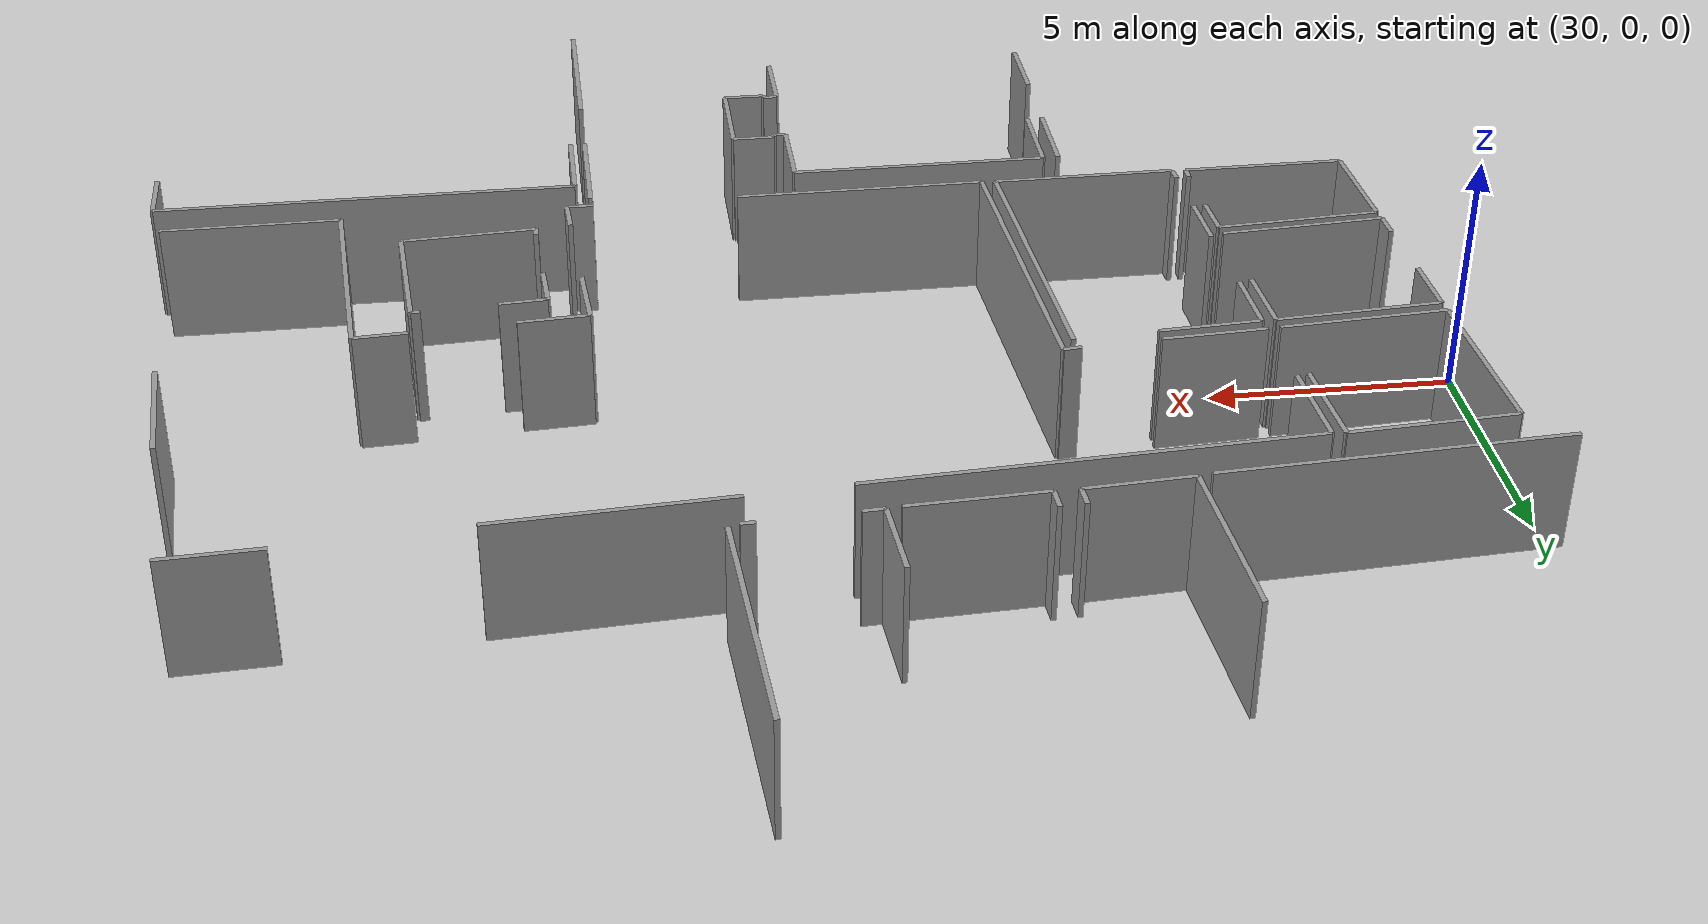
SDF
<sdf version="1.6">
 <world name="default">
  <model name="ground_plane">
   <static>1</static>
   <link name="link">
    <collision name="collision">
     <geometry><plane><normal>0 0 1</normal><size>100 100</size></plane></geometry>
     <surface><friction><ode><mu>100</mu><mu2>50</mu2></ode></friction></surface>
    </collision>
    <visual name="visual">
     <cast_shadows>0</cast_shadows>
     <geometry><plane><normal>0 0 1</normal><size>100 100</size></plane></geometry>
     <material>
      <script><uri>file://media/materials/scripts/gazebo.material</uri><name>Gazebo/Grey</name></script>
     </material>
    </visual>
   </link>
  </model>
  <model name="50025631">
   <static>1</static>
   <link name="Wall_79">
    <collision name="Wall_79_Collision">
     <geometry><box><size>0.282784674415 0.1 2.5</size></box></geometry>
     <pose>0.141392337207 0 1.25 0 0 0</pose>
    </collision>
    <visual name="Wall_79_Visual">
     <pose>0.141392337207 0 1.25 0 0 0</pose>
     <geometry><box><size>0.282784674415 0.1 2.5</size></box></geometry>
     <material>
      <script><uri>file://media/materials/scripts/gazebo.material</uri><name>Gazebo/Grey</name></script>
      <ambient>1 1 1 1</ambient>
     </material>
    </visual>
    <pose>100.915585529 -42.0435630235 0 0 0 -3.10430657143</pose>
   </link>
   <link name="Wall_80">
    <collision name="Wall_80_Collision">
     <geometry><box><size>0.428947510548 0.1 2.5</size></box></geometry>
     <pose>0.214473755274 0 1.25 0 0 0</pose>
    </collision>
    <visual name="Wall_80_Visual">
     <pose>0.214473755274 0 1.25 0 0 0</pose>
     <geometry><box><size>0.428947510548 0.1 2.5</size></box></geometry>
     <material>
      <script><uri>file://media/materials/scripts/gazebo.material</uri><name>Gazebo/Grey</name></script>
      <ambient>1 1 1 1</ambient>
     </material>
    </visual>
    <pose>98.7806163596 -42.1582493507 0 0 0 -3.09064360288</pose>
   </link>
   <link name="Wall_81">
    <collision name="Wall_81_Collision">
     <geometry><box><size>1.72743461681 0.1 2.5</size></box></geometry>
     <pose>0.863717308407 0 1.25 0 0 0</pose>
    </collision>
    <visual name="Wall_81_Visual">
     <pose>0.863717308407 0 1.25 0 0 0</pose>
     <geometry><box><size>1.72743461681 0.1 2.5</size></box></geometry>
     <material>
      <script><uri>file://media/materials/scripts/gazebo.material</uri><name>Gazebo/Grey</name></script>
      <ambient>1 1 1 1</ambient>
     </material>
    </visual>
    <pose>98.3522254609 -42.1800943654 0 0 0 1.63635212241</pose>
   </link>
   <link name="Wall_130">
    <collision name="Wall_130_Collision">
     <geometry><box><size>5.19189119286 0.1 2.5</size></box></geometry>
     <pose>2.59594559643 0 1.25 0 0 0</pose>
    </collision>
    <visual name="Wall_130_Visual">
     <pose>2.59594559643 0 1.25 0 0 0</pose>
     <geometry><box><size>5.19189119286 0.1 2.5</size></box></geometry>
     <material>
      <script><uri>file://media/materials/scripts/gazebo.material</uri><name>Gazebo/Grey</name></script>
      <ambient>1 1 1 1</ambient>
     </material>
    </visual>
    <pose>101.129336458 -41.9763769027 0 0 0 1.62459053032</pose>
   </link>
   <link name="Wall_135">
    <collision name="Wall_135_Collision">
     <geometry><box><size>2.69886629602 0.1 2.5</size></box></geometry>
     <pose>1.34943314801 0 1.25 0 0 0</pose>
    </collision>
    <visual name="Wall_135_Visual">
     <pose>1.34943314801 0 1.25 0 0 0</pose>
     <geometry><box><size>2.69886629602 0.1 2.5</size></box></geometry>
     <material>
      <script><uri>file://media/materials/scripts/gazebo.material</uri><name>Gazebo/Grey</name></script>
      <ambient>1 1 1 1</ambient>
     </material>
    </visual>
    <pose>98.0634140456 -42.2164180526 0 0 0 -3.09315001709</pose>
   </link>
   <link name="Wall_136">
    <collision name="Wall_136_Collision">
     <geometry><box><size>0.472586084644 0.1 2.5</size></box></geometry>
     <pose>0.236293042322 0 1.25 0 0 0</pose>
    </collision>
    <visual name="Wall_136_Visual">
     <pose>0.236293042322 0 1.25 0 0 0</pose>
     <geometry><box><size>0.472586084644 0.1 2.5</size></box></geometry>
     <material>
      <script><uri>file://media/materials/scripts/gazebo.material</uri><name>Gazebo/Grey</name></script>
      <ambient>1 1 1 1</ambient>
     </material>
    </visual>
    <pose>95.3677138303 -42.3471071231 0 0 0 1.61703721763</pose>
   </link>
   <link name="Wall_138">
    <collision name="Wall_138_Collision">
     <geometry><box><size>0.457990475903 0.1 2.5</size></box></geometry>
     <pose>0.228995237951 0 1.25 0 0 0</pose>
    </collision>
    <visual name="Wall_138_Visual">
     <pose>0.228995237951 0 1.25 0 0 0</pose>
     <geometry><box><size>0.457990475903 0.1 2.5</size></box></geometry>
     <material>
      <script><uri>file://media/materials/scripts/gazebo.material</uri><name>Gazebo/Grey</name></script>
      <ambient>1 1 1 1</ambient>
     </material>
    </visual>
    <pose>94.8521968845 -41.8968712097 0 0 0 -1.52335831737</pose>
   </link>
   <link name="Wall_139">
    <collision name="Wall_139_Collision">
     <geometry><box><size>2.13206895655 0.1 2.5</size></box></geometry>
     <pose>1.06603447828 0 1.25 0 0 0</pose>
    </collision>
    <visual name="Wall_139_Visual">
     <pose>1.06603447828 0 1.25 0 0 0</pose>
     <geometry><box><size>2.13206895655 0.1 2.5</size></box></geometry>
     <material>
      <script><uri>file://media/materials/scripts/gazebo.material</uri><name>Gazebo/Grey</name></script>
      <ambient>1 1 1 1</ambient>
     </material>
    </visual>
    <pose>94.8739148933 -42.3543464594 0 0 0 -3.07685516227</pose>
   </link>
   <link name="Wall_140">
    <collision name="Wall_140_Collision">
     <geometry><box><size>3.70160611265 0.1 2.5</size></box></geometry>
     <pose>1.85080305633 0 1.25 0 0 0</pose>
    </collision>
    <visual name="Wall_140_Visual">
     <pose>1.85080305633 0 1.25 0 0 0</pose>
     <geometry><box><size>3.70160611265 0.1 2.5</size></box></geometry>
     <material>
      <script><uri>file://media/materials/scripts/gazebo.material</uri><name>Gazebo/Grey</name></script>
      <ambient>1 1 1 1</ambient>
     </material>
    </visual>
    <pose>92.7463120662 -42.4922748662 0 0 0 1.63558655034</pose>
   </link>
   <link name="Wall_145">
    <collision name="Wall_145_Collision">
     <geometry><box><size>6.91459844677 0.1 2.5</size></box></geometry>
     <pose>3.45729922338 0 1.25 0 0 0</pose>
    </collision>
    <visual name="Wall_145_Visual">
     <pose>3.45729922338 0 1.25 0 0 0</pose>
     <geometry><box><size>6.91459844677 0.1 2.5</size></box></geometry>
     <material>
      <script><uri>file://media/materials/scripts/gazebo.material</uri><name>Gazebo/Grey</name></script>
      <ambient>1 1 1 1</ambient>
     </material>
    </visual>
    <pose>92.4708362703 -42.5396480667 0 0 0 -3.08246903037</pose>
   </link>
   <link name="Wall_172">
    <collision name="Wall_172_Collision">
     <geometry><box><size>3.64331292754 0.1 2.5</size></box></geometry>
     <pose>1.82165646377 0 1.25 0 0 0</pose>
    </collision>
    <visual name="Wall_172_Visual">
     <pose>1.82165646377 0 1.25 0 0 0</pose>
     <geometry><box><size>3.64331292754 0.1 2.5</size></box></geometry>
     <material>
      <script><uri>file://media/materials/scripts/gazebo.material</uri><name>Gazebo/Grey</name></script>
      <ambient>1 1 1 1</ambient>
     </material>
    </visual>
    <pose>111.614054473 -53.5047023934 0 0 0 -3.13814150645</pose>
   </link>
   <link name="Wall_173">
    <collision name="Wall_173_Collision">
     <geometry><box><size>4.62572053015 0.1 2.5</size></box></geometry>
     <pose>2.31286026507 0 1.25 0 0 0</pose>
    </collision>
    <visual name="Wall_173_Visual">
     <pose>2.31286026507 0 1.25 0 0 0</pose>
     <geometry><box><size>4.62572053015 0.1 2.5</size></box></geometry>
     <material>
      <script><uri>file://media/materials/scripts/gazebo.material</uri><name>Gazebo/Grey</name></script>
      <ambient>1 1 1 1</ambient>
     </material>
    </visual>
    <pose>107.970763242 -53.5172759775 0 0 0 1.63638189992</pose>
   </link>
   <link name="Wall_174">
    <collision name="Wall_174_Collision">
     <geometry><box><size>1.07530812886 0.1 2.5</size></box></geometry>
     <pose>0.537654064431 0 1.25 0 0 0</pose>
    </collision>
    <visual name="Wall_174_Visual">
     <pose>0.537654064431 0 1.25 0 0 0</pose>
     <geometry><box><size>1.07530812886 0.1 2.5</size></box></geometry>
     <material>
      <script><uri>file://media/materials/scripts/gazebo.material</uri><name>Gazebo/Grey</name></script>
      <ambient>1 1 1 1</ambient>
     </material>
    </visual>
    <pose>107.66760016 -48.9015005747 0 0 0 -3.08285763805</pose>
   </link>
   <link name="Wall_175">
    <collision name="Wall_175_Collision">
     <geometry><box><size>1.4188035034 0.1 2.5</size></box></geometry>
     <pose>0.709401751699 0 1.25 0 0 0</pose>
    </collision>
    <visual name="Wall_175_Visual">
     <pose>0.709401751699 0 1.25 0 0 0</pose>
     <geometry><box><size>1.4188035034 0.1 2.5</size></box></geometry>
     <material>
      <script><uri>file://media/materials/scripts/gazebo.material</uri><name>Gazebo/Grey</name></script>
      <ambient>1 1 1 1</ambient>
     </material>
    </visual>
    <pose>104.522553073 -49.0988677424 0 0 0 -3.07718598556</pose>
   </link>
   <link name="Wall_176">
    <collision name="Wall_176_Collision">
     <geometry><box><size>1.45096289916 0.1 2.5</size></box></geometry>
     <pose>0.725481449581 0 1.25 0 0 0</pose>
    </collision>
    <visual name="Wall_176_Visual">
     <pose>0.725481449581 0 1.25 0 0 0</pose>
     <geometry><box><size>1.45096289916 0.1 2.5</size></box></geometry>
     <material>
      <script><uri>file://media/materials/scripts/gazebo.material</uri><name>Gazebo/Grey</name></script>
      <ambient>1 1 1 1</ambient>
     </material>
    </visual>
    <pose>103.106691306 -49.1901849841 0 0 0 -1.50413500219</pose>
   </link>
   <link name="Wall_177">
    <collision name="Wall_177_Collision">
     <geometry><box><size>0.75869379462 0.1 2.5</size></box></geometry>
     <pose>0.37934689731 0 1.25 0 0 0</pose>
    </collision>
    <visual name="Wall_177_Visual">
     <pose>0.37934689731 0 1.25 0 0 0</pose>
     <geometry><box><size>0.75869379462 0.1 2.5</size></box></geometry>
     <material>
      <script><uri>file://media/materials/scripts/gazebo.material</uri><name>Gazebo/Grey</name></script>
      <ambient>1 1 1 1</ambient>
     </material>
    </visual>
    <pose>103.323490376 -52.7337765839 0 0 0 -1.52005212917</pose>
   </link>
   <link name="Wall_178">
    <collision name="Wall_178_Collision">
     <geometry><box><size>0.538151707432 0.1 2.5</size></box></geometry>
     <pose>0.269075853716 0 1.25 0 0 0</pose>
    </collision>
    <visual name="Wall_178_Visual">
     <pose>0.269075853716 0 1.25 0 0 0</pose>
     <geometry><box><size>0.538151707432 0.1 2.5</size></box></geometry>
     <material>
      <script><uri>file://media/materials/scripts/gazebo.material</uri><name>Gazebo/Grey</name></script>
      <ambient>1 1 1 1</ambient>
     </material>
    </visual>
    <pose>103.361973164 -53.4914937799 0 0 0 3.13144431188</pose>
   </link>
   <link name="Wall_179">
    <collision name="Wall_179_Collision">
     <geometry><box><size>5.13359416547 0.1 2.5</size></box></geometry>
     <pose>2.56679708273 0 1.25 0 0 0</pose>
    </collision>
    <visual name="Wall_179_Visual">
     <pose>2.56679708273 0 1.25 0 0 0</pose>
     <geometry><box><size>5.13359416547 0.1 2.5</size></box></geometry>
     <material>
      <script><uri>file://media/materials/scripts/gazebo.material</uri><name>Gazebo/Grey</name></script>
      <ambient>1 1 1 1</ambient>
     </material>
    </visual>
    <pose>99.8376864605 -53.4983520985 0 0 0 -3.13911863588</pose>
   </link>
   <link name="Wall_180">
    <collision name="Wall_180_Collision">
     <geometry><box><size>6.65933276321 0.1 2.5</size></box></geometry>
     <pose>3.3296663816 0 1.25 0 0 0</pose>
    </collision>
    <visual name="Wall_180_Visual">
     <pose>3.3296663816 0 1.25 0 0 0</pose>
     <geometry><box><size>6.65933276321 0.1 2.5</size></box></geometry>
     <material>
      <script><uri>file://media/materials/scripts/gazebo.material</uri><name>Gazebo/Grey</name></script>
      <ambient>1 1 1 1</ambient>
     </material>
    </visual>
    <pose>94.7041080058 -53.5110526884 0 0 0 1.63295340932</pose>
   </link>
   <link name="Wall_181">
    <collision name="Wall_181_Collision">
     <geometry><box><size>0.365064291237 0.1 2.5</size></box></geometry>
     <pose>0.182532145619 0 1.25 0 0 0</pose>
    </collision>
    <visual name="Wall_181_Visual">
     <pose>0.182532145619 0 1.25 0 0 0</pose>
     <geometry><box><size>0.365064291237 0.1 2.5</size></box></geometry>
     <material>
      <script><uri>file://media/materials/scripts/gazebo.material</uri><name>Gazebo/Grey</name></script>
      <ambient>1 1 1 1</ambient>
     </material>
    </visual>
    <pose>94.2904497914 -46.8645799597 0 0 0 -3.01952470088</pose>
   </link>
   <link name="Wall_182">
    <collision name="Wall_182_Collision">
     <geometry><box><size>2.1057798775 0.1 2.5</size></box></geometry>
     <pose>1.05288993875 0 1.25 0 0 0</pose>
    </collision>
    <visual name="Wall_182_Visual">
     <pose>1.05288993875 0 1.25 0 0 0</pose>
     <geometry><box><size>2.1057798775 0.1 2.5</size></box></geometry>
     <material>
      <script><uri>file://media/materials/scripts/gazebo.material</uri><name>Gazebo/Grey</name></script>
      <ambient>1 1 1 1</ambient>
     </material>
    </visual>
    <pose>92.355133896 -47.0134308739 0 0 0 -3.0875862701</pose>
   </link>
   <link name="Wall_183">
    <collision name="Wall_183_Collision">
     <geometry><box><size>1.94923563541 0.1 2.5</size></box></geometry>
     <pose>0.974617817707 0 1.25 0 0 0</pose>
    </collision>
    <visual name="Wall_183_Visual">
     <pose>0.974617817707 0 1.25 0 0 0</pose>
     <geometry><box><size>1.94923563541 0.1 2.5</size></box></geometry>
     <material>
      <script><uri>file://media/materials/scripts/gazebo.material</uri><name>Gazebo/Grey</name></script>
      <ambient>1 1 1 1</ambient>
     </material>
    </visual>
    <pose>90.1484063935 -45.4615457888 0 0 0 1.63077651376</pose>
   </link>
   <link name="Wall_184">
    <collision name="Wall_184_Collision">
     <geometry><box><size>8.77440802262 0.1 2.5</size></box></geometry>
     <pose>4.38720401131 0 1.25 0 0 0</pose>
    </collision>
    <visual name="Wall_184_Visual">
     <pose>4.38720401131 0 1.25 0 0 0</pose>
     <geometry><box><size>8.77440802262 0.1 2.5</size></box></geometry>
     <material>
      <script><uri>file://media/materials/scripts/gazebo.material</uri><name>Gazebo/Grey</name></script>
      <ambient>1 1 1 1</ambient>
     </material>
    </visual>
    <pose>90.031560966 -43.5158154096 0 0 0 0.0612658068285</pose>
   </link>
   <link name="Wall_185">
    <collision name="Wall_185_Collision">
     <geometry><box><size>4.64846834846 0.1 2.5</size></box></geometry>
     <pose>2.32423417423 0 1.25 0 0 0</pose>
    </collision>
    <visual name="Wall_185_Visual">
     <pose>2.32423417423 0 1.25 0 0 0</pose>
     <geometry><box><size>4.64846834846 0.1 2.5</size></box></geometry>
     <material>
      <script><uri>file://media/materials/scripts/gazebo.material</uri><name>Gazebo/Grey</name></script>
      <ambient>1 1 1 1</ambient>
     </material>
    </visual>
    <pose>100.764194497 -42.8560197621 0 0 0 0.0633476566463</pose>
   </link>
   <link name="Wall_186">
    <collision name="Wall_186_Collision">
     <geometry><box><size>1.94876193725 0.1 2.5</size></box></geometry>
     <pose>0.974380968625 0 1.25 0 0 0</pose>
    </collision>
    <visual name="Wall_186_Visual">
     <pose>0.974380968625 0 1.25 0 0 0</pose>
     <geometry><box><size>1.94876193725 0.1 2.5</size></box></geometry>
     <material>
      <script><uri>file://media/materials/scripts/gazebo.material</uri><name>Gazebo/Grey</name></script>
      <ambient>1 1 1 1</ambient>
     </material>
    </visual>
    <pose>108.954169921 -42.3107834359 0 0 0 0.0521617378571</pose>
   </link>
   <link name="Wall_187">
    <collision name="Wall_187_Collision">
     <geometry><box><size>2.58600179958 0.1 2.5</size></box></geometry>
     <pose>1.29300089979 0 1.25 0 0 0</pose>
    </collision>
    <visual name="Wall_187_Visual">
     <pose>1.29300089979 0 1.25 0 0 0</pose>
     <geometry><box><size>2.58600179958 0.1 2.5</size></box></geometry>
     <material>
      <script><uri>file://media/materials/scripts/gazebo.material</uri><name>Gazebo/Grey</name></script>
      <ambient>1 1 1 1</ambient>
     </material>
    </visual>
    <pose>111.121271583 -45.5863925879 0 0 0 -1.50789040836</pose>
   </link>
   <link name="Wall_188">
    <collision name="Wall_188_Collision">
     <geometry><box><size>2.01223509323 0.1 2.5</size></box></geometry>
     <pose>1.00611754661 0 1.25 0 0 0</pose>
    </collision>
    <visual name="Wall_188_Visual">
     <pose>1.00611754661 0 1.25 0 0 0</pose>
     <geometry><box><size>2.01223509323 0.1 2.5</size></box></geometry>
     <material>
      <script><uri>file://media/materials/scripts/gazebo.material</uri><name>Gazebo/Grey</name></script>
      <ambient>1 1 1 1</ambient>
     </material>
    </visual>
    <pose>89.9100163203 -45.5007906117 0 0 0 1.6424320644</pose>
   </link>
   <link name="Wall_189">
    <collision name="Wall_189_Collision">
     <geometry><box><size>3.3493233256 0.1 2.5</size></box></geometry>
     <pose>1.6746616628 0 1.25 0 0 0</pose>
    </collision>
    <visual name="Wall_189_Visual">
     <pose>1.6746616628 0 1.25 0 0 0</pose>
     <geometry><box><size>3.3493233256 0.1 2.5</size></box></geometry>
     <material>
      <script><uri>file://media/materials/scripts/gazebo.material</uri><name>Gazebo/Grey</name></script>
      <ambient>1 1 1 1</ambient>
     </material>
    </visual>
    <pose>89.7659916303 -43.4937163831 0 0 0 -3.07560211764</pose>
   </link>
   <link name="Wall_190">
    <collision name="Wall_190_Collision">
     <geometry><box><size>3.66342753915 0.1 2.5</size></box></geometry>
     <pose>1.83171376957 0 1.25 0 0 0</pose>
    </collision>
    <visual name="Wall_190_Visual">
     <pose>1.83171376957 0 1.25 0 0 0</pose>
     <geometry><box><size>3.66342753915 0.1 2.5</size></box></geometry>
     <material>
      <script><uri>file://media/materials/scripts/gazebo.material</uri><name>Gazebo/Grey</name></script>
      <ambient>1 1 1 1</ambient>
     </material>
    </visual>
    <pose>86.4239583929 -43.7145796422 0 0 0 -1.51397859662</pose>
   </link>
   <link name="Wall_191">
    <collision name="Wall_191_Collision">
     <geometry><box><size>3.38116883963 0.1 2.5</size></box></geometry>
     <pose>1.69058441982 0 1.25 0 0 0</pose>
    </collision>
    <visual name="Wall_191_Visual">
     <pose>1.69058441982 0 1.25 0 0 0</pose>
     <geometry><box><size>3.38116883963 0.1 2.5</size></box></geometry>
     <material>
      <script><uri>file://media/materials/scripts/gazebo.material</uri><name>Gazebo/Grey</name></script>
      <ambient>1 1 1 1</ambient>
     </material>
    </visual>
    <pose>86.6319940561 -47.3720955338 0 0 0 0.0649540448732</pose>
   </link>
   <link name="Wall_192">
    <collision name="Wall_192_Collision">
     <geometry><box><size>3.77603332984 0.1 2.5</size></box></geometry>
     <pose>1.88801666492 0 1.25 0 0 0</pose>
    </collision>
    <visual name="Wall_192_Visual">
     <pose>1.88801666492 0 1.25 0 0 0</pose>
     <geometry><box><size>3.77603332984 0.1 2.5</size></box></geometry>
     <material>
      <script><uri>file://media/materials/scripts/gazebo.material</uri><name>Gazebo/Grey</name></script>
      <ambient>1 1 1 1</ambient>
     </material>
    </visual>
    <pose>94.4198688029 -53.4921288094 0 0 0 -3.13826280817</pose>
   </link>
   <link name="Wall_193">
    <collision name="Wall_193_Collision">
     <geometry><box><size>0.329281648643 0.1 2.5</size></box></geometry>
     <pose>0.164640824321 0 1.25 0 0 0</pose>
    </collision>
    <visual name="Wall_193_Visual">
     <pose>0.164640824321 0 1.25 0 0 0</pose>
     <geometry><box><size>0.329281648643 0.1 2.5</size></box></geometry>
     <material>
      <script><uri>file://media/materials/scripts/gazebo.material</uri><name>Gazebo/Grey</name></script>
      <ambient>1 1 1 1</ambient>
     </material>
    </visual>
    <pose>90.6438564071 -53.5047023934 0 0 0 1.64762738266</pose>
   </link>
   <link name="Wall_194">
    <collision name="Wall_194_Collision">
     <geometry><box><size>1.30154992604 0.1 2.5</size></box></geometry>
     <pose>0.650774963022 0 1.25 0 0 0</pose>
    </collision>
    <visual name="Wall_194_Visual">
     <pose>0.650774963022 0 1.25 0 0 0</pose>
     <geometry><box><size>1.30154992604 0.1 2.5</size></box></geometry>
     <material>
      <script><uri>file://media/materials/scripts/gazebo.material</uri><name>Gazebo/Grey</name></script>
      <ambient>1 1 1 1</ambient>
     </material>
    </visual>
    <pose>90.5533012008 -51.9905380605 0 0 0 1.62107146349</pose>
   </link>
   <link name="Wall_195">
    <collision name="Wall_195_Collision">
     <geometry><box><size>1.48000573497 0.1 2.5</size></box></geometry>
     <pose>0.740002867485 0 1.25 0 0 0</pose>
    </collision>
    <visual name="Wall_195_Visual">
     <pose>0.740002867485 0 1.25 0 0 0</pose>
     <geometry><box><size>1.48000573497 0.1 2.5</size></box></geometry>
     <material>
      <script><uri>file://media/materials/scripts/gazebo.material</uri><name>Gazebo/Grey</name></script>
      <ambient>1 1 1 1</ambient>
     </material>
    </visual>
    <pose>90.3739688709 -48.9021356042 0 0 0 1.62162036733</pose>
   </link>
   <link name="Wall_196">
    <collision name="Wall_196_Collision">
     <geometry><box><size>2.05813371947 0.1 2.5</size></box></geometry>
     <pose>1.02906685973 0 1.25 0 0 0</pose>
    </collision>
    <visual name="Wall_196_Visual">
     <pose>1.02906685973 0 1.25 0 0 0</pose>
     <geometry><box><size>2.05813371947 0.1 2.5</size></box></geometry>
     <material>
      <script><uri>file://media/materials/scripts/gazebo.material</uri><name>Gazebo/Grey</name></script>
      <ambient>1 1 1 1</ambient>
     </material>
    </visual>
    <pose>90.2987813784 -47.4240409467 0 0 0 0.060882931672</pose>
   </link>
   <link name="Wall_197">
    <collision name="Wall_197_Collision">
     <geometry><box><size>6.3130689498 0.1 2.5</size></box></geometry>
     <pose>3.1565344749 0 1.25 0 0 0</pose>
    </collision>
    <visual name="Wall_197_Visual">
     <pose>3.1565344749 0 1.25 0 0 0</pose>
     <geometry><box><size>6.3130689498 0.1 2.5</size></box></geometry>
     <material>
      <script><uri>file://media/materials/scripts/gazebo.material</uri><name>Gazebo/Grey</name></script>
      <ambient>1 1 1 1</ambient>
     </material>
    </visual>
    <pose>94.0299606917 -47.1911121272 0 0 0 -1.50899493856</pose>
   </link>
   <link name="Wall_198">
    <collision name="Wall_198_Collision">
     <geometry><box><size>3.33102339423 0.1 2.5</size></box></geometry>
     <pose>1.66551169712 0 1.25 0 0 0</pose>
    </collision>
    <visual name="Wall_198_Visual">
     <pose>1.66551169712 0 1.25 0 0 0</pose>
     <geometry><box><size>3.33102339423 0.1 2.5</size></box></geometry>
     <material>
      <script><uri>file://media/materials/scripts/gazebo.material</uri><name>Gazebo/Grey</name></script>
      <ambient>1 1 1 1</ambient>
     </material>
    </visual>
    <pose>90.3503457736 -53.4842544436 0 0 0 -3.13671222564</pose>
   </link>
   <link name="Wall_199">
    <collision name="Wall_199_Collision">
     <geometry><box><size>2.24162098073 0.1 2.5</size></box></geometry>
     <pose>1.12081049036 0 1.25 0 0 0</pose>
    </collision>
    <visual name="Wall_199_Visual">
     <pose>1.12081049036 0 1.25 0 0 0</pose>
     <geometry><box><size>2.24162098073 0.1 2.5</size></box></geometry>
     <material>
      <script><uri>file://media/materials/scripts/gazebo.material</uri><name>Gazebo/Grey</name></script>
      <ambient>1 1 1 1</ambient>
     </material>
    </visual>
    <pose>87.0193620494 -53.5005111987 0 0 0 1.63077651376</pose>
   </link>
   <link name="Wall_200">
    <collision name="Wall_200_Collision">
     <geometry><box><size>3.36784855976 0.1 2.5</size></box></geometry>
     <pose>1.68392427988 0 1.25 0 0 0</pose>
    </collision>
    <visual name="Wall_200_Visual">
     <pose>1.68392427988 0 1.25 0 0 0</pose>
     <geometry><box><size>3.36784855976 0.1 2.5</size></box></geometry>
     <material>
      <script><uri>file://media/materials/scripts/gazebo.material</uri><name>Gazebo/Grey</name></script>
      <ambient>1 1 1 1</ambient>
     </material>
    </visual>
    <pose>86.8849898078 -51.2629212627 0 0 0 0.0627928360992</pose>
   </link>
   <link name="Wall_201">
    <collision name="Wall_201_Collision">
     <geometry><box><size>0.952505338745 0.1 2.5</size></box></geometry>
     <pose>0.476252669373 0 1.25 0 0 0</pose>
    </collision>
    <visual name="Wall_201_Visual">
     <pose>0.476252669373 0 1.25 0 0 0</pose>
     <geometry><box><size>0.952505338745 0.1 2.5</size></box></geometry>
     <material>
      <script><uri>file://media/materials/scripts/gazebo.material</uri><name>Gazebo/Grey</name></script>
      <ambient>1 1 1 1</ambient>
     </material>
    </visual>
    <pose>90.246200936 -51.0515834461 0 0 0 -1.51035706989</pose>
   </link>
   <link name="Wall_202">
    <collision name="Wall_202_Collision">
     <geometry><box><size>0.300389009271 0.1 2.5</size></box></geometry>
     <pose>0.150194504635 0 1.25 0 0 0</pose>
    </collision>
    <visual name="Wall_202_Visual">
     <pose>0.150194504635 0 1.25 0 0 0</pose>
     <geometry><box><size>0.300389009271 0.1 2.5</size></box></geometry>
     <material>
      <script><uri>file://media/materials/scripts/gazebo.material</uri><name>Gazebo/Grey</name></script>
      <ambient>1 1 1 1</ambient>
     </material>
    </visual>
    <pose>90.3597442101 -53.1840124974 0 0 0 -1.60208898503</pose>
   </link>
   <link name="Wall_203">
    <collision name="Wall_203_Collision">
     <geometry><box><size>1.53094260347 0.1 2.5</size></box></geometry>
     <pose>0.765471301736 0 1.25 0 0 0</pose>
    </collision>
    <visual name="Wall_203_Visual">
     <pose>0.765471301736 0 1.25 0 0 0</pose>
     <geometry><box><size>1.53094260347 0.1 2.5</size></box></geometry>
     <material>
      <script><uri>file://media/materials/scripts/gazebo.material</uri><name>Gazebo/Grey</name></script>
      <ambient>1 1 1 1</ambient>
     </material>
    </visual>
    <pose>90.1134797711 -48.9582722117 0 0 0 1.63272352528</pose>
   </link>
   <link name="Wall_204">
    <collision name="Wall_204_Collision">
     <geometry><box><size>3.3602304867 0.1 2.5</size></box></geometry>
     <pose>1.68011524335 0 1.25 0 0 0</pose>
    </collision>
    <visual name="Wall_204_Visual">
     <pose>1.68011524335 0 1.25 0 0 0</pose>
     <geometry><box><size>3.3602304867 0.1 2.5</size></box></geometry>
     <material>
      <script><uri>file://media/materials/scripts/gazebo.material</uri><name>Gazebo/Grey</name></script>
      <ambient>1 1 1 1</ambient>
     </material>
    </visual>
    <pose>90.0187333702 -47.4302642358 0 0 0 -3.07577875125</pose>
   </link>
   <link name="Wall_205">
    <collision name="Wall_205_Collision">
     <geometry><box><size>1.32122699491 0.1 2.5</size></box></geometry>
     <pose>0.660613497454 0 1.25 0 0 0</pose>
    </collision>
    <visual name="Wall_205_Visual">
     <pose>0.660613497454 0 1.25 0 0 0</pose>
     <geometry><box><size>1.32122699491 0.1 2.5</size></box></geometry>
     <material>
      <script><uri>file://media/materials/scripts/gazebo.material</uri><name>Gazebo/Grey</name></script>
      <ambient>1 1 1 1</ambient>
     </material>
    </visual>
    <pose>86.6657776254 -47.6512545008 0 0 0 -1.52300289742</pose>
   </link>
   <link name="Wall_206">
    <collision name="Wall_206_Collision">
     <geometry><box><size>0.556676825151 0.1 2.5</size></box></geometry>
     <pose>0.278338412576 0 1.25 0 0 0</pose>
    </collision>
    <visual name="Wall_206_Visual">
     <pose>0.278338412576 0 1.25 0 0 0</pose>
     <geometry><box><size>0.556676825151 0.1 2.5</size></box></geometry>
     <material>
      <script><uri>file://media/materials/scripts/gazebo.material</uri><name>Gazebo/Grey</name></script>
      <ambient>1 1 1 1</ambient>
     </material>
    </visual>
    <pose>86.8172956634 -50.4547827247 0 0 0 -1.51395633888</pose>
   </link>
   <link name="Wall_207">
    <collision name="Wall_207_Collision">
     <geometry><box><size>3.37871233629 0.1 2.5</size></box></geometry>
     <pose>1.68935616815 0 1.25 0 0 0</pose>
    </collision>
    <visual name="Wall_207_Visual">
     <pose>1.68935616815 0 1.25 0 0 0</pose>
     <geometry><box><size>3.37871233629 0.1 2.5</size></box></geometry>
     <material>
      <script><uri>file://media/materials/scripts/gazebo.material</uri><name>Gazebo/Grey</name></script>
      <ambient>1 1 1 1</ambient>
     </material>
    </visual>
    <pose>86.8489201323 -51.0105605405 0 0 0 0.063607624724</pose>
   </link>
   <link name="Wall_216">
    <collision name="Wall_216_Collision">
     <geometry><box><size>2.40574574689 0.1 2.5</size></box></geometry>
     <pose>1.20287287344 0 1.25 0 0 0</pose>
    </collision>
    <visual name="Wall_216_Visual">
     <pose>1.20287287344 0 1.25 0 0 0</pose>
     <geometry><box><size>2.40574574689 0.1 2.5</size></box></geometry>
     <material>
      <script><uri>file://media/materials/scripts/gazebo.material</uri><name>Gazebo/Grey</name></script>
      <ambient>1 1 1 1</ambient>
     </material>
    </visual>
    <pose>102.862331955 -53.7825913014 0 0 0 -1.57079632679</pose>
   </link>
   <link name="Wall_217">
    <collision name="Wall_217_Collision">
     <geometry><box><size>3.51323718987 0.1 2.5</size></box></geometry>
     <pose>1.75661859493 0 1.25 0 0 0</pose>
    </collision>
    <visual name="Wall_217_Visual">
     <pose>1.75661859493 0 1.25 0 0 0</pose>
     <geometry><box><size>3.51323718987 0.1 2.5</size></box></geometry>
     <material>
      <script><uri>file://media/materials/scripts/gazebo.material</uri><name>Gazebo/Grey</name></script>
      <ambient>1 1 1 1</ambient>
     </material>
    </visual>
    <pose>102.862331955 -57.7853092276 0 0 0 -1.57079632679</pose>
   </link>
   <link name="Wall_224">
    <collision name="Wall_224_Collision">
     <geometry><box><size>1.85542918469 0.1 2.5</size></box></geometry>
     <pose>0.927714592343 0 1.25 0 0 0</pose>
    </collision>
    <visual name="Wall_224_Visual">
     <pose>0.927714592343 0 1.25 0 0 0</pose>
     <geometry><box><size>1.85542918469 0.1 2.5</size></box></geometry>
     <material>
      <script><uri>file://media/materials/scripts/gazebo.material</uri><name>Gazebo/Grey</name></script>
      <ambient>1 1 1 1</ambient>
     </material>
    </visual>
    <pose>103.159144742 -56.2120871514 0 0 0 1.57079632679</pose>
   </link>
   <link name="Wall_225">
    <collision name="Wall_225_Collision">
     <geometry><box><size>8.65176887466 0.1 2.5</size></box></geometry>
     <pose>4.32588443733 0 1.25 0 0 0</pose>
    </collision>
    <visual name="Wall_225_Visual">
     <pose>4.32588443733 0 1.25 0 0 0</pose>
     <geometry><box><size>8.65176887466 0.1 2.5</size></box></geometry>
     <material>
      <script><uri>file://media/materials/scripts/gazebo.material</uri><name>Gazebo/Grey</name></script>
      <ambient>1 1 1 1</ambient>
     </material>
    </visual>
    <pose>103.159144742 -54.3566579668 0 0 0 0.0</pose>
   </link>
   <link name="Wall_226">
    <collision name="Wall_226_Collision">
     <geometry><box><size>1.25951750459 0.1 2.5</size></box></geometry>
     <pose>0.629758752294 0 1.25 0 0 0</pose>
    </collision>
    <visual name="Wall_226_Visual">
     <pose>0.629758752294 0 1.25 0 0 0</pose>
     <geometry><box><size>1.25951750459 0.1 2.5</size></box></geometry>
     <material>
      <script><uri>file://media/materials/scripts/gazebo.material</uri><name>Gazebo/Grey</name></script>
      <ambient>1 1 1 1</ambient>
     </material>
    </visual>
    <pose>111.810913617 -54.3566579668 0 0 0 -1.57079632679</pose>
   </link>
   <link name="Wall_266">
    <collision name="Wall_266_Collision">
     <geometry><box><size>1.80437281312 0.1 2.5</size></box></geometry>
     <pose>0.902186406559 0 1.25 0 0 0</pose>
    </collision>
    <visual name="Wall_266_Visual">
     <pose>0.902186406559 0 1.25 0 0 0</pose>
     <geometry><box><size>1.80437281312 0.1 2.5</size></box></geometry>
     <material>
      <script><uri>file://media/materials/scripts/gazebo.material</uri><name>Gazebo/Grey</name></script>
      <ambient>1 1 1 1</ambient>
     </material>
    </visual>
    <pose>93.2369358557 -56.1908771662 0 0 0 1.57079632679</pose>
   </link>
   <link name="Wall_267">
    <collision name="Wall_267_Collision">
     <geometry><box><size>5.30414737765 0.1 2.5</size></box></geometry>
     <pose>2.65207368882 0 1.25 0 0 0</pose>
    </collision>
    <visual name="Wall_267_Visual">
     <pose>2.65207368882 0 1.25 0 0 0</pose>
     <geometry><box><size>5.30414737765 0.1 2.5</size></box></geometry>
     <material>
      <script><uri>file://media/materials/scripts/gazebo.material</uri><name>Gazebo/Grey</name></script>
      <ambient>1 1 1 1</ambient>
     </material>
    </visual>
    <pose>93.2369358557 -54.3865043531 0 0 0 0.0</pose>
   </link>
   <link name="Wall_268">
    <collision name="Wall_268_Collision">
     <geometry><box><size>1.7197868841 0.1 2.5</size></box></geometry>
     <pose>0.85989344205 0 1.25 0 0 0</pose>
    </collision>
    <visual name="Wall_268_Visual">
     <pose>0.85989344205 0 1.25 0 0 0</pose>
     <geometry><box><size>1.7197868841 0.1 2.5</size></box></geometry>
     <material>
      <script><uri>file://media/materials/scripts/gazebo.material</uri><name>Gazebo/Grey</name></script>
      <ambient>1 1 1 1</ambient>
     </material>
    </visual>
    <pose>98.5410832333 -54.3865043531 0 0 0 -1.57079632679</pose>
   </link>
   <link name="Wall_269">
    <collision name="Wall_269_Collision">
     <geometry><box><size>0.254773834245 0.1 2.5</size></box></geometry>
     <pose>0.127386917122 0 1.25 0 0 0</pose>
    </collision>
    <visual name="Wall_269_Visual">
     <pose>0.127386917122 0 1.25 0 0 0</pose>
     <geometry><box><size>0.254773834245 0.1 2.5</size></box></geometry>
     <material>
      <script><uri>file://media/materials/scripts/gazebo.material</uri><name>Gazebo/Grey</name></script>
      <ambient>1 1 1 1</ambient>
     </material>
    </visual>
    <pose>98.5410832333 -56.1062912372 0 0 0 0.0</pose>
   </link>
   <link name="Wall_270">
    <collision name="Wall_270_Collision">
     <geometry><box><size>0.0883961059991 0.1 2.5</size></box></geometry>
     <pose>0.0441980529996 0 1.25 0 0 0</pose>
    </collision>
    <visual name="Wall_270_Visual">
     <pose>0.0441980529996 0 1.25 0 0 0</pose>
     <geometry><box><size>0.0883961059991 0.1 2.5</size></box></geometry>
     <material>
      <script><uri>file://media/materials/scripts/gazebo.material</uri><name>Gazebo/Grey</name></script>
      <ambient>1 1 1 1</ambient>
     </material>
    </visual>
    <pose>98.7958570676 -56.1062912372 0 0 0 1.57079632679</pose>
   </link>
   <link name="Wall_271">
    <collision name="Wall_271_Collision">
     <geometry><box><size>0.878372800417 0.1 2.5</size></box></geometry>
     <pose>0.439186400208 0 1.25 0 0 0</pose>
    </collision>
    <visual name="Wall_271_Visual">
     <pose>0.439186400208 0 1.25 0 0 0</pose>
     <geometry><box><size>0.878372800417 0.1 2.5</size></box></geometry>
     <material>
      <script><uri>file://media/materials/scripts/gazebo.material</uri><name>Gazebo/Grey</name></script>
      <ambient>1 1 1 1</ambient>
     </material>
    </visual>
    <pose>98.7958570676 -56.0178951312 0 0 0 0.0</pose>
   </link>
   <link name="Wall_272">
    <collision name="Wall_272_Collision">
     <geometry><box><size>1.94433331428 0.1 2.5</size></box></geometry>
     <pose>0.972166657141 0 1.25 0 0 0</pose>
    </collision>
    <visual name="Wall_272_Visual">
     <pose>0.972166657141 0 1.25 0 0 0</pose>
     <geometry><box><size>1.94433331428 0.1 2.5</size></box></geometry>
     <material>
      <script><uri>file://media/materials/scripts/gazebo.material</uri><name>Gazebo/Grey</name></script>
      <ambient>1 1 1 1</ambient>
     </material>
    </visual>
    <pose>99.674229868 -56.0178951312 0 0 0 -1.57079632679</pose>
   </link>
   <link name="Wall_273">
    <collision name="Wall_273_Collision">
     <geometry><box><size>0.842684142678 0.1 2.5</size></box></geometry>
     <pose>0.421342071339 0 1.25 0 0 0</pose>
    </collision>
    <visual name="Wall_273_Visual">
     <pose>0.421342071339 0 1.25 0 0 0</pose>
     <geometry><box><size>0.842684142678 0.1 2.5</size></box></geometry>
     <material>
      <script><uri>file://media/materials/scripts/gazebo.material</uri><name>Gazebo/Grey</name></script>
      <ambient>1 1 1 1</ambient>
     </material>
    </visual>
    <pose>99.674229868 -57.9622284455 0 0 0 3.14159265359</pose>
   </link>
   <link name="Wall_274">
    <collision name="Wall_274_Collision">
     <geometry><box><size>0.0811567697319 0.1 2.5</size></box></geometry>
     <pose>0.040578384866 0 1.25 0 0 0</pose>
    </collision>
    <visual name="Wall_274_Visual">
     <pose>0.040578384866 0 1.25 0 0 0</pose>
     <geometry><box><size>0.0811567697319 0.1 2.5</size></box></geometry>
     <material>
      <script><uri>file://media/materials/scripts/gazebo.material</uri><name>Gazebo/Grey</name></script>
      <ambient>1 1 1 1</ambient>
     </material>
    </visual>
    <pose>98.8315457253 -57.9622284455 0 0 0 1.57079632679</pose>
   </link>
   <link name="Wall_275">
    <collision name="Wall_275_Collision">
     <geometry><box><size>0.291224527379 0.1 2.5</size></box></geometry>
     <pose>0.14561226369 0 1.25 0 0 0</pose>
    </collision>
    <visual name="Wall_275_Visual">
     <pose>0.14561226369 0 1.25 0 0 0</pose>
     <geometry><box><size>0.291224527379 0.1 2.5</size></box></geometry>
     <material>
      <script><uri>file://media/materials/scripts/gazebo.material</uri><name>Gazebo/Grey</name></script>
      <ambient>1 1 1 1</ambient>
     </material>
    </visual>
    <pose>98.8315457253 -57.8810716758 0 0 0 3.14159265359</pose>
   </link>
   <link name="Wall_276">
    <collision name="Wall_276_Collision">
     <geometry><box><size>1.518128297 0.1 2.5</size></box></geometry>
     <pose>0.759064148502 0 1.25 0 0 0</pose>
    </collision>
    <visual name="Wall_276_Visual">
     <pose>0.759064148502 0 1.25 0 0 0</pose>
     <geometry><box><size>1.518128297 0.1 2.5</size></box></geometry>
     <material>
      <script><uri>file://media/materials/scripts/gazebo.material</uri><name>Gazebo/Grey</name></script>
      <ambient>1 1 1 1</ambient>
     </material>
    </visual>
    <pose>98.5403211979 -57.8810716758 0 0 0 -1.56485646525</pose>
   </link>
   <link name="Wall_282">
    <collision name="Wall_282_Collision">
     <geometry><box><size>1.8090720314 0.1 2.5</size></box></geometry>
     <pose>0.904536015698 0 1.25 0 0 0</pose>
    </collision>
    <visual name="Wall_282_Visual">
     <pose>0.904536015698 0 1.25 0 0 0</pose>
     <geometry><box><size>1.8090720314 0.1 2.5</size></box></geometry>
     <material>
      <script><uri>file://media/materials/scripts/gazebo.material</uri><name>Gazebo/Grey</name></script>
      <ambient>1 1 1 1</ambient>
     </material>
    </visual>
    <pose>92.9110387177 -54.3865043531 0 0 0 -1.57079632679</pose>
   </link>
   <link name="Wall_283">
    <collision name="Wall_283_Collision">
     <geometry><box><size>1.63023352633 0.1 2.5</size></box></geometry>
     <pose>0.815116763163 0 1.25 0 0 0</pose>
    </collision>
    <visual name="Wall_283_Visual">
     <pose>0.815116763163 0 1.25 0 0 0</pose>
     <geometry><box><size>1.63023352633 0.1 2.5</size></box></geometry>
     <material>
      <script><uri>file://media/materials/scripts/gazebo.material</uri><name>Gazebo/Grey</name></script>
      <ambient>1 1 1 1</ambient>
     </material>
    </visual>
    <pose>92.9110387177 -57.7874683279 0 0 0 -1.55903216365</pose>
   </link>
   <link name="Wall_547">
    <collision name="Wall_547_Collision">
     <geometry><box><size>2.72009378062 0.1 2.5</size></box></geometry>
     <pose>1.36004689031 0 1.25 0 0 0</pose>
    </collision>
    <visual name="Wall_547_Visual">
     <pose>1.36004689031 0 1.25 0 0 0</pose>
     <geometry><box><size>2.72009378062 0.1 2.5</size></box></geometry>
     <material>
      <script><uri>file://media/materials/scripts/gazebo.material</uri><name>Gazebo/Grey</name></script>
      <ambient>1 1 1 1</ambient>
     </material>
    </visual>
    <pose>106.745664336 -52.4943704635 0 0 0 -3.08118350475</pose>
   </link>
   <link name="Wall_548">
    <collision name="Wall_548_Collision">
     <geometry><box><size>0.233773704701 0.1 2.5</size></box></geometry>
     <pose>0.11688685235 0 1.25 0 0 0</pose>
    </collision>
    <visual name="Wall_548_Visual">
     <pose>0.11688685235 0 1.25 0 0 0</pose>
     <geometry><box><size>0.233773704701 0.1 2.5</size></box></geometry>
     <material>
      <script><uri>file://media/materials/scripts/gazebo.material</uri><name>Gazebo/Grey</name></script>
      <ambient>1 1 1 1</ambient>
     </material>
    </visual>
    <pose>104.030532218 -52.6585890915 0 0 0 1.54417218459</pose>
   </link>
   <link name="Wall_549">
    <collision name="Wall_549_Collision">
     <geometry><box><size>1.0121538078 0.1 2.5</size></box></geometry>
     <pose>0.5060769039 0 1.25 0 0 0</pose>
    </collision>
    <visual name="Wall_549_Visual">
     <pose>0.5060769039 0 1.25 0 0 0</pose>
     <geometry><box><size>1.0121538078 0.1 2.5</size></box></geometry>
     <material>
      <script><uri>file://media/materials/scripts/gazebo.material</uri><name>Gazebo/Grey</name></script>
      <ambient>1 1 1 1</ambient>
     </material>
    </visual>
    <pose>103.95242359 -50.8896509243 0 0 0 1.62867529932</pose>
   </link>
   <link name="Wall_550">
    <collision name="Wall_550_Collision">
     <geometry><box><size>0.97056096802 0.1 2.5</size></box></geometry>
     <pose>0.48528048401 0 1.25 0 0 0</pose>
    </collision>
    <visual name="Wall_550_Visual">
     <pose>0.48528048401 0 1.25 0 0 0</pose>
     <geometry><box><size>0.97056096802 0.1 2.5</size></box></geometry>
     <material>
      <script><uri>file://media/materials/scripts/gazebo.material</uri><name>Gazebo/Grey</name></script>
      <ambient>1 1 1 1</ambient>
     </material>
    </visual>
    <pose>103.89387387 -49.8791919885 0 0 0 0.0602312012481</pose>
   </link>
   <link name="Wall_551">
    <collision name="Wall_551_Collision">
     <geometry><box><size>0.18798713752 0.1 2.5</size></box></geometry>
     <pose>0.0939935687602 0 1.25 0 0 0</pose>
    </collision>
    <visual name="Wall_551_Visual">
     <pose>0.0939935687602 0 1.25 0 0 0</pose>
     <geometry><box><size>0.18798713752 0.1 2.5</size></box></geometry>
     <material>
      <script><uri>file://media/materials/scripts/gazebo.material</uri><name>Gazebo/Grey</name></script>
      <ambient>1 1 1 1</ambient>
     </material>
    </visual>
    <pose>106.365408673 -49.7192915611 0 0 0 0.117148214096</pose>
   </link>
   <link name="Wall_552">
    <collision name="Wall_552_Collision">
     <geometry><box><size>2.80374003335 0.1 2.5</size></box></geometry>
     <pose>1.40187001667 0 1.25 0 0 0</pose>
    </collision>
    <visual name="Wall_552_Visual">
     <pose>1.40187001667 0 1.25 0 0 0</pose>
     <geometry><box><size>2.80374003335 0.1 2.5</size></box></geometry>
     <material>
      <script><uri>file://media/materials/scripts/gazebo.material</uri><name>Gazebo/Grey</name></script>
      <ambient>1 1 1 1</ambient>
     </material>
    </visual>
    <pose>106.552107345 -49.6973195405 0 0 0 -1.50170608887</pose>
   </link>
   <pose>-55.9 48.5496043766 0 0 0 0</pose>
  </model>
 </world>
</sdf>
